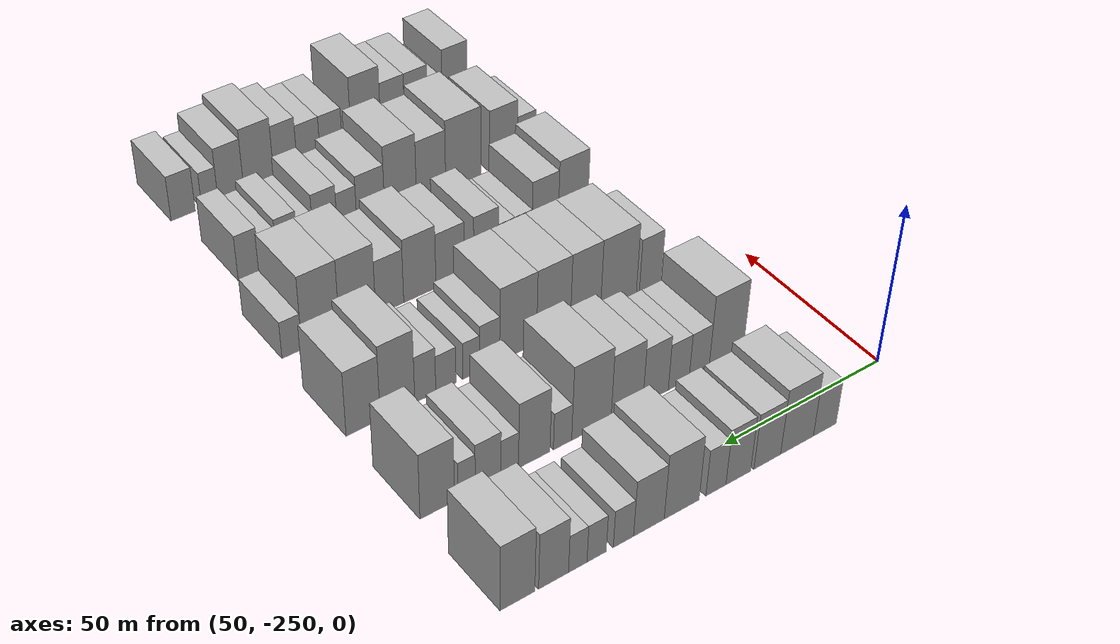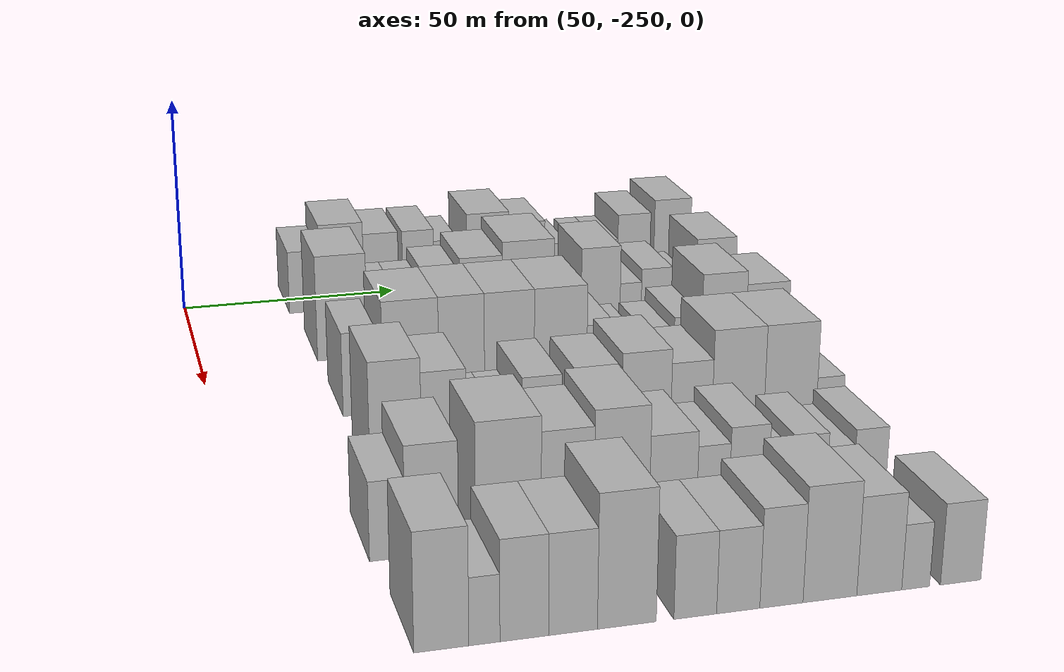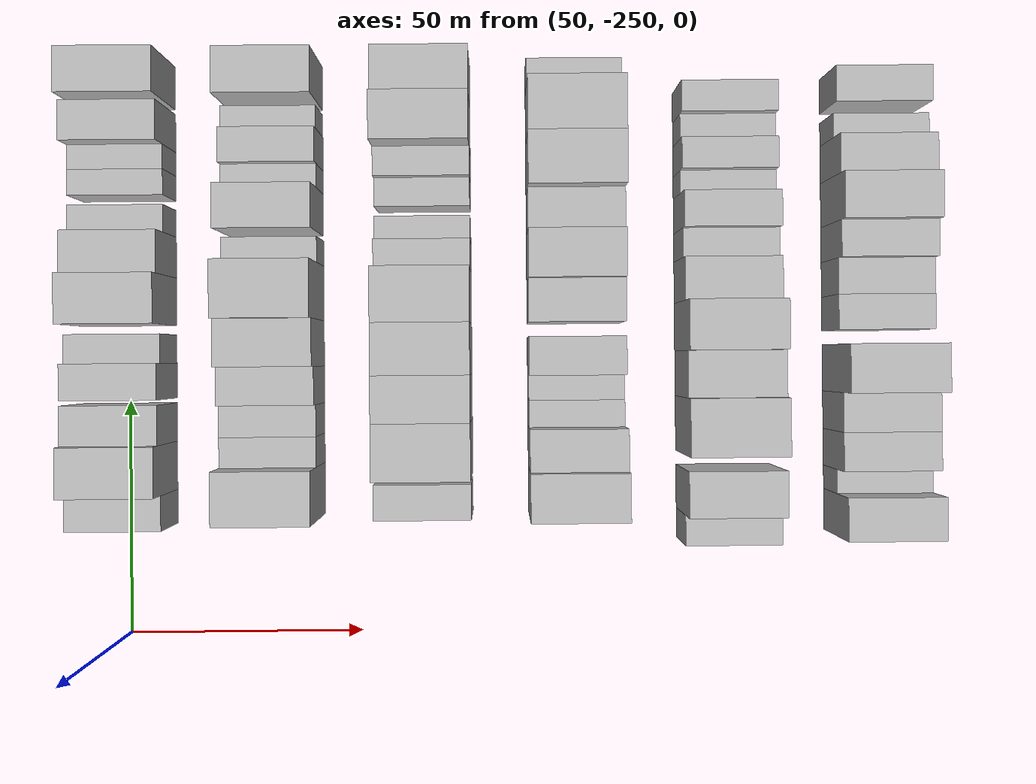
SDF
<sdf version="1.6">
 <world name="default">
  <model name="building_36">
   <static>1</static>
   <pose>50.0000 -222.8408 0 0.000000 0.000000 0.000000</pose>
   <link name="link">
    <pose>0 0 7.50 0 0 0</pose>
    <collision name="collision"><geometry><box><size>20.0000 7.3463 15.0000</size></box></geometry></collision>
    <visual name="visual">
     <cast_shadows>0</cast_shadows>
     <geometry><box><size>20.0000 7.3463 15.0000</size></box></geometry>
     <material>
      <script>
       <uri>model://HANNAS_wall/materials/scripts</uri>
       <uri>model://HANNAS_wall/materials/textures</uri>
       <name>vrc/HANNAS_wall</name>
      </script>
     </material>
    </visual>
   </link>
  </model>
  <model name="building_37">
   <static>1</static>
   <pose>50.0000 -213.9594 0 0.000000 0.000000 0.000000</pose>
   <link name="link">
    <pose>0 0 10.50 0 0 0</pose>
    <collision name="collision"><geometry><box><size>20.0000 10.4166 21.0000</size></box></geometry></collision>
    <visual name="visual">
     <cast_shadows>0</cast_shadows>
     <geometry><box><size>20.0000 10.4166 21.0000</size></box></geometry>
     <material>
      <script>
       <uri>model://HANNAS_wall/materials/scripts</uri>
       <uri>model://HANNAS_wall/materials/textures</uri>
       <name>vrc/HANNAS_wall</name>
      </script>
     </material>
    </visual>
   </link>
  </model>
  <model name="building_38">
   <static>1</static>
   <pose>50.0000 -204.5821 0 0.000000 0.000000 0.000000</pose>
   <link name="link">
    <pose>0 0 9.00 0 0 0</pose>
    <collision name="collision"><geometry><box><size>20.0000 8.3380 18.0000</size></box></geometry></collision>
    <visual name="visual">
     <cast_shadows>0</cast_shadows>
     <geometry><box><size>20.0000 8.3380 18.0000</size></box></geometry>
     <material>
      <script>
       <uri>model://HANNAS_wall/materials/scripts</uri>
       <uri>model://HANNAS_wall/materials/textures</uri>
       <name>vrc/HANNAS_wall</name>
      </script>
     </material>
    </visual>
   </link>
  </model>
  <model name="building_39">
   <static>1</static>
   <pose>50.0000 -195.6251 0 0.000000 0.000000 0.000000</pose>
   <link name="link">
    <pose>0 0 9.00 0 0 0</pose>
    <collision name="collision"><geometry><box><size>20.0000 7.5759 18.0000</size></box></geometry></collision>
    <visual name="visual">
     <cast_shadows>0</cast_shadows>
     <geometry><box><size>20.0000 7.5759 18.0000</size></box></geometry>
     <material>
      <script>
       <uri>model://HANNAS_wall/materials/scripts</uri>
       <uri>model://HANNAS_wall/materials/textures</uri>
       <name>vrc/HANNAS_wall</name>
      </script>
     </material>
    </visual>
   </link>
  </model>
  <model name="building_40">
   <static>1</static>
   <pose>50.0000 -188.8017 0 0.000000 0.000000 0.000000</pose>
   <link name="link">
    <pose>0 0 7.50 0 0 0</pose>
    <collision name="collision"><geometry><box><size>20.0000 6.0710 15.0000</size></box></geometry></collision>
    <visual name="visual">
     <cast_shadows>0</cast_shadows>
     <geometry><box><size>20.0000 6.0710 15.0000</size></box></geometry>
     <material>
      <script>
       <uri>model://HANNAS_wall/materials/scripts</uri>
       <uri>model://HANNAS_wall/materials/textures</uri>
       <name>vrc/HANNAS_wall</name>
      </script>
     </material>
    </visual>
   </link>
  </model>
  <model name="building_41">
   <static>1</static>
   <pose>50.0000 -178.6005 0 0.000000 0.000000 0.000000</pose>
   <link name="link">
    <pose>0 0 10.50 0 0 0</pose>
    <collision name="collision"><geometry><box><size>20.0000 10.3312 21.0000</size></box></geometry></collision>
    <visual name="visual">
     <cast_shadows>0</cast_shadows>
     <geometry><box><size>20.0000 10.3312 21.0000</size></box></geometry>
     <material>
      <script>
       <uri>model://HANNAS_wall/materials/scripts</uri>
       <uri>model://HANNAS_wall/materials/textures</uri>
       <name>vrc/HANNAS_wall</name>
      </script>
     </material>
    </visual>
   </link>
  </model>
  <model name="building_42">
   <static>1</static>
   <pose>50.0000 -168.9784 0 0.000000 0.000000 0.000000</pose>
   <link name="link">
    <pose>0 0 9.00 0 0 0</pose>
    <collision name="collision"><geometry><box><size>20.0000 8.9131 18.0000</size></box></geometry></collision>
    <visual name="visual">
     <cast_shadows>0</cast_shadows>
     <geometry><box><size>20.0000 8.9131 18.0000</size></box></geometry>
     <material>
      <script>
       <uri>model://HANNAS_wall/materials/scripts</uri>
       <uri>model://HANNAS_wall/materials/textures</uri>
       <name>vrc/HANNAS_wall</name>
      </script>
     </material>
    </visual>
   </link>
  </model>
  <model name="building_43">
   <static>1</static>
   <pose>50.0000 -161.6210 0 0.000000 0.000000 0.000000</pose>
   <link name="link">
    <pose>0 0 6.00 0 0 0</pose>
    <collision name="collision"><geometry><box><size>20.0000 5.8015 12.0000</size></box></geometry></collision>
    <visual name="visual">
     <cast_shadows>0</cast_shadows>
     <geometry><box><size>20.0000 5.8015 12.0000</size></box></geometry>
     <material>
      <script>
       <uri>model://HANNAS_wall/materials/scripts</uri>
       <uri>model://HANNAS_wall/materials/textures</uri>
       <name>vrc/HANNAS_wall</name>
      </script>
     </material>
    </visual>
   </link>
  </model>
  <model name="building_44">
   <static>1</static>
   <pose>50.0000 -154.0106 0 0.000000 0.000000 0.000000</pose>
   <link name="link">
    <pose>0 0 6.00 0 0 0</pose>
    <collision name="collision"><geometry><box><size>20.0000 5.4193 12.0000</size></box></geometry></collision>
    <visual name="visual">
     <cast_shadows>0</cast_shadows>
     <geometry><box><size>20.0000 5.4193 12.0000</size></box></geometry>
     <material>
      <script>
       <uri>model://HANNAS_wall/materials/scripts</uri>
       <uri>model://HANNAS_wall/materials/textures</uri>
       <name>vrc/HANNAS_wall</name>
      </script>
     </material>
    </visual>
   </link>
  </model>
  <model name="building_45">
   <static>1</static>
   <pose>50.0000 -148.7169 0 0.000000 0.000000 0.000000</pose>
   <link name="link">
    <pose>0 0 6.00 0 0 0</pose>
    <collision name="collision"><geometry><box><size>20.0000 5.1680 12.0000</size></box></geometry></collision>
    <visual name="visual">
     <cast_shadows>0</cast_shadows>
     <geometry><box><size>20.0000 5.1680 12.0000</size></box></geometry>
     <material>
      <script>
       <uri>model://HANNAS_wall/materials/scripts</uri>
       <uri>model://HANNAS_wall/materials/textures</uri>
       <name>vrc/HANNAS_wall</name>
      </script>
     </material>
    </visual>
   </link>
  </model>
  <model name="building_46">
   <static>1</static>
   <pose>50.0000 -142.0158 0 0.000000 0.000000 0.000000</pose>
   <link name="link">
    <pose>0 0 9.00 0 0 0</pose>
    <collision name="collision"><geometry><box><size>20.0000 8.2341 18.0000</size></box></geometry></collision>
    <visual name="visual">
     <cast_shadows>0</cast_shadows>
     <geometry><box><size>20.0000 8.2341 18.0000</size></box></geometry>
     <material>
      <script>
       <uri>model://HANNAS_wall/materials/scripts</uri>
       <uri>model://HANNAS_wall/materials/textures</uri>
       <name>vrc/HANNAS_wall</name>
      </script>
     </material>
    </visual>
   </link>
  </model>
  <model name="building_47">
   <static>1</static>
   <pose>50.0000 -132.2057 0 0.000000 0.000000 0.000000</pose>
   <link name="link">
    <pose>0 0 10.50 0 0 0</pose>
    <collision name="collision"><geometry><box><size>20.0000 9.3862 21.0000</size></box></geometry></collision>
    <visual name="visual">
     <cast_shadows>0</cast_shadows>
     <geometry><box><size>20.0000 9.3862 21.0000</size></box></geometry>
     <material>
      <script>
       <uri>model://HANNAS_wall/materials/scripts</uri>
       <uri>model://HANNAS_wall/materials/textures</uri>
       <name>vrc/HANNAS_wall</name>
      </script>
     </material>
    </visual>
   </link>
  </model>
  <model name="building_155">
   <static>1</static>
   <pose>82.0000 -219.1794 0 0.000000 0.000000 0.000000</pose>
   <link name="link">
    <pose>0 0 12.00 0 0 0</pose>
    <collision name="collision"><geometry><box><size>20.0000 11.1140 24.0000</size></box></geometry></collision>
    <visual name="visual">
     <cast_shadows>0</cast_shadows>
     <geometry><box><size>20.0000 11.1140 24.0000</size></box></geometry>
     <material>
      <script>
       <uri>model://HANNAS_wall/materials/scripts</uri>
       <uri>model://HANNAS_wall/materials/textures</uri>
       <name>vrc/HANNAS_wall</name>
      </script>
     </material>
    </visual>
   </link>
  </model>
  <model name="building_156">
   <static>1</static>
   <pose>82.0000 -210.4470 0 0.000000 0.000000 0.000000</pose>
   <link name="link">
    <pose>0 0 7.50 0 0 0</pose>
    <collision name="collision"><geometry><box><size>20.0000 6.3507 15.0000</size></box></geometry></collision>
    <visual name="visual">
     <cast_shadows>0</cast_shadows>
     <geometry><box><size>20.0000 6.3507 15.0000</size></box></geometry>
     <material>
      <script>
       <uri>model://HANNAS_wall/materials/scripts</uri>
       <uri>model://HANNAS_wall/materials/textures</uri>
       <name>vrc/HANNAS_wall</name>
      </script>
     </material>
    </visual>
   </link>
  </model>
  <model name="building_157">
   <static>1</static>
   <pose>82.0000 -203.9694 0 0.000000 0.000000 0.000000</pose>
   <link name="link">
    <pose>0 0 7.50 0 0 0</pose>
    <collision name="collision"><geometry><box><size>20.0000 6.6044 15.0000</size></box></geometry></collision>
    <visual name="visual">
     <cast_shadows>0</cast_shadows>
     <geometry><box><size>20.0000 6.6044 15.0000</size></box></geometry>
     <material>
      <script>
       <uri>model://HANNAS_wall/materials/scripts</uri>
       <uri>model://HANNAS_wall/materials/textures</uri>
       <name>vrc/HANNAS_wall</name>
      </script>
     </material>
    </visual>
   </link>
  </model>
  <model name="building_158">
   <static>1</static>
   <pose>82.0000 -196.7022 0 0.000000 0.000000 0.000000</pose>
   <link name="link">
    <pose>0 0 9.00 0 0 0</pose>
    <collision name="collision"><geometry><box><size>20.0000 7.9300 18.0000</size></box></geometry></collision>
    <visual name="visual">
     <cast_shadows>0</cast_shadows>
     <geometry><box><size>20.0000 7.9300 18.0000</size></box></geometry>
     <material>
      <script>
       <uri>model://HANNAS_wall/materials/scripts</uri>
       <uri>model://HANNAS_wall/materials/textures</uri>
       <name>vrc/HANNAS_wall</name>
      </script>
     </material>
    </visual>
   </link>
  </model>
  <model name="building_159">
   <static>1</static>
   <pose>82.0000 -187.8419 0 0.000000 0.000000 0.000000</pose>
   <link name="link">
    <pose>0 0 10.50 0 0 0</pose>
    <collision name="collision"><geometry><box><size>20.0000 9.7906 21.0000</size></box></geometry></collision>
    <visual name="visual">
     <cast_shadows>0</cast_shadows>
     <geometry><box><size>20.0000 9.7906 21.0000</size></box></geometry>
     <material>
      <script>
       <uri>model://HANNAS_wall/materials/scripts</uri>
       <uri>model://HANNAS_wall/materials/textures</uri>
       <name>vrc/HANNAS_wall</name>
      </script>
     </material>
    </visual>
   </link>
  </model>
  <model name="building_160">
   <static>1</static>
   <pose>82.0000 -177.0161 0 0.000000 0.000000 0.000000</pose>
   <link name="link">
    <pose>0 0 12.00 0 0 0</pose>
    <collision name="collision"><geometry><box><size>20.0000 11.8612 24.0000</size></box></geometry></collision>
    <visual name="visual">
     <cast_shadows>0</cast_shadows>
     <geometry><box><size>20.0000 11.8612 24.0000</size></box></geometry>
     <material>
      <script>
       <uri>model://HANNAS_wall/materials/scripts</uri>
       <uri>model://HANNAS_wall/materials/textures</uri>
       <name>vrc/HANNAS_wall</name>
      </script>
     </material>
    </visual>
   </link>
  </model>
  <model name="building_161">
   <static>1</static>
   <pose>82.0000 -168.3735 0 0.000000 0.000000 0.000000</pose>
   <link name="link">
    <pose>0 0 6.00 0 0 0</pose>
    <collision name="collision"><geometry><box><size>20.0000 5.4239 12.0000</size></box></geometry></collision>
    <visual name="visual">
     <cast_shadows>0</cast_shadows>
     <geometry><box><size>20.0000 5.4239 12.0000</size></box></geometry>
     <material>
      <script>
       <uri>model://HANNAS_wall/materials/scripts</uri>
       <uri>model://HANNAS_wall/materials/textures</uri>
       <name>vrc/HANNAS_wall</name>
      </script>
     </material>
    </visual>
   </link>
  </model>
  <model name="building_162">
   <static>1</static>
   <pose>82.0000 -160.0753 0 0.000000 0.000000 0.000000</pose>
   <link name="link">
    <pose>0 0 10.50 0 0 0</pose>
    <collision name="collision"><geometry><box><size>20.0000 9.1726 21.0000</size></box></geometry></collision>
    <visual name="visual">
     <cast_shadows>0</cast_shadows>
     <geometry><box><size>20.0000 9.1726 21.0000</size></box></geometry>
     <material>
      <script>
       <uri>model://HANNAS_wall/materials/scripts</uri>
       <uri>model://HANNAS_wall/materials/textures</uri>
       <name>vrc/HANNAS_wall</name>
      </script>
     </material>
    </visual>
   </link>
  </model>
  <model name="building_163">
   <static>1</static>
   <pose>82.0000 -152.9676 0 0.000000 0.000000 0.000000</pose>
   <link name="link">
    <pose>0 0 6.00 0 0 0</pose>
    <collision name="collision"><geometry><box><size>20.0000 5.0426 12.0000</size></box></geometry></collision>
    <visual name="visual">
     <cast_shadows>0</cast_shadows>
     <geometry><box><size>20.0000 5.0426 12.0000</size></box></geometry>
     <material>
      <script>
       <uri>model://HANNAS_wall/materials/scripts</uri>
       <uri>model://HANNAS_wall/materials/textures</uri>
       <name>vrc/HANNAS_wall</name>
      </script>
     </material>
    </visual>
   </link>
  </model>
  <model name="building_164">
   <static>1</static>
   <pose>82.0000 -146.7928 0 0.000000 0.000000 0.000000</pose>
   <link name="link">
    <pose>0 0 7.50 0 0 0</pose>
    <collision name="collision"><geometry><box><size>20.0000 7.3072 15.0000</size></box></geometry></collision>
    <visual name="visual">
     <cast_shadows>0</cast_shadows>
     <geometry><box><size>20.0000 7.3072 15.0000</size></box></geometry>
     <material>
      <script>
       <uri>model://HANNAS_wall/materials/scripts</uri>
       <uri>model://HANNAS_wall/materials/textures</uri>
       <name>vrc/HANNAS_wall</name>
      </script>
     </material>
    </visual>
   </link>
  </model>
  <model name="building_165">
   <static>1</static>
   <pose>82.0000 -140.7306 0 0.000000 0.000000 0.000000</pose>
   <link name="link">
    <pose>0 0 6.00 0 0 0</pose>
    <collision name="collision"><geometry><box><size>20.0000 4.8173 12.0000</size></box></geometry></collision>
    <visual name="visual">
     <cast_shadows>0</cast_shadows>
     <geometry><box><size>20.0000 4.8173 12.0000</size></box></geometry>
     <material>
      <script>
       <uri>model://HANNAS_wall/materials/scripts</uri>
       <uri>model://HANNAS_wall/materials/textures</uri>
       <name>vrc/HANNAS_wall</name>
      </script>
     </material>
    </visual>
   </link>
  </model>
  <model name="building_166">
   <static>1</static>
   <pose>82.0000 -132.5626 0 0.000000 0.000000 0.000000</pose>
   <link name="link">
    <pose>0 0 10.50 0 0 0</pose>
    <collision name="collision"><geometry><box><size>20.0000 9.5186 21.0000</size></box></geometry></collision>
    <visual name="visual">
     <cast_shadows>0</cast_shadows>
     <geometry><box><size>20.0000 9.5186 21.0000</size></box></geometry>
     <material>
      <script>
       <uri>model://HANNAS_wall/materials/scripts</uri>
       <uri>model://HANNAS_wall/materials/textures</uri>
       <name>vrc/HANNAS_wall</name>
      </script>
     </material>
    </visual>
   </link>
  </model>
  <model name="building_281">
   <static>1</static>
   <pose>114.0000 -220.7055 0 0.000000 0.000000 0.000000</pose>
   <link name="link">
    <pose>0 0 9.00 0 0 0</pose>
    <collision name="collision"><geometry><box><size>20.0000 7.2987 18.0000</size></box></geometry></collision>
    <visual name="visual">
     <cast_shadows>0</cast_shadows>
     <geometry><box><size>20.0000 7.2987 18.0000</size></box></geometry>
     <material>
      <script>
       <uri>model://HANNAS_wall/materials/scripts</uri>
       <uri>model://HANNAS_wall/materials/textures</uri>
       <name>vrc/HANNAS_wall</name>
      </script>
     </material>
    </visual>
   </link>
  </model>
  <model name="building_282">
   <static>1</static>
   <pose>114.0000 -210.2077 0 0.000000 0.000000 0.000000</pose>
   <link name="link">
    <pose>0 0 12.00 0 0 0</pose>
    <collision name="collision"><geometry><box><size>20.0000 11.6969 24.0000</size></box></geometry></collision>
    <visual name="visual">
     <cast_shadows>0</cast_shadows>
     <geometry><box><size>20.0000 11.6969 24.0000</size></box></geometry>
     <material>
      <script>
       <uri>model://HANNAS_wall/materials/scripts</uri>
       <uri>model://HANNAS_wall/materials/textures</uri>
       <name>vrc/HANNAS_wall</name>
      </script>
     </material>
    </visual>
   </link>
  </model>
  <model name="building_283">
   <static>1</static>
   <pose>114.0000 -199.5411 0 0.000000 0.000000 0.000000</pose>
   <link name="link">
    <pose>0 0 12.00 0 0 0</pose>
    <collision name="collision"><geometry><box><size>20.0000 9.6362 24.0000</size></box></geometry></collision>
    <visual name="visual">
     <cast_shadows>0</cast_shadows>
     <geometry><box><size>20.0000 9.6362 24.0000</size></box></geometry>
     <material>
      <script>
       <uri>model://HANNAS_wall/materials/scripts</uri>
       <uri>model://HANNAS_wall/materials/textures</uri>
       <name>vrc/HANNAS_wall</name>
      </script>
     </material>
    </visual>
   </link>
  </model>
  <model name="building_284">
   <static>1</static>
   <pose>114.0000 -189.4087 0 0.000000 0.000000 0.000000</pose>
   <link name="link">
    <pose>0 0 12.00 0 0 0</pose>
    <collision name="collision"><geometry><box><size>20.0000 10.6286 24.0000</size></box></geometry></collision>
    <visual name="visual">
     <cast_shadows>0</cast_shadows>
     <geometry><box><size>20.0000 10.6286 24.0000</size></box></geometry>
     <material>
      <script>
       <uri>model://HANNAS_wall/materials/scripts</uri>
       <uri>model://HANNAS_wall/materials/textures</uri>
       <name>vrc/HANNAS_wall</name>
      </script>
     </material>
    </visual>
   </link>
  </model>
  <model name="building_285">
   <static>1</static>
   <pose>114.0000 -178.4120 0 0.000000 0.000000 0.000000</pose>
   <link name="link">
    <pose>0 0 12.00 0 0 0</pose>
    <collision name="collision"><geometry><box><size>20.0000 11.3648 24.0000</size></box></geometry></collision>
    <visual name="visual">
     <cast_shadows>0</cast_shadows>
     <geometry><box><size>20.0000 11.3648 24.0000</size></box></geometry>
     <material>
      <script>
       <uri>model://HANNAS_wall/materials/scripts</uri>
       <uri>model://HANNAS_wall/materials/textures</uri>
       <name>vrc/HANNAS_wall</name>
      </script>
     </material>
    </visual>
   </link>
  </model>
  <model name="building_286">
   <static>1</static>
   <pose>114.0000 -169.6664 0 0.000000 0.000000 0.000000</pose>
   <link name="link">
    <pose>0 0 7.50 0 0 0</pose>
    <collision name="collision"><geometry><box><size>20.0000 6.1264 15.0000</size></box></geometry></collision>
    <visual name="visual">
     <cast_shadows>0</cast_shadows>
     <geometry><box><size>20.0000 6.1264 15.0000</size></box></geometry>
     <material>
      <script>
       <uri>model://HANNAS_wall/materials/scripts</uri>
       <uri>model://HANNAS_wall/materials/textures</uri>
       <name>vrc/HANNAS_wall</name>
      </script>
     </material>
    </visual>
   </link>
  </model>
  <model name="building_287">
   <static>1</static>
   <pose>114.0000 -164.0897 0 0.000000 0.000000 0.000000</pose>
   <link name="link">
    <pose>0 0 6.00 0 0 0</pose>
    <collision name="collision"><geometry><box><size>20.0000 5.0271 12.0000</size></box></geometry></collision>
    <visual name="visual">
     <cast_shadows>0</cast_shadows>
     <geometry><box><size>20.0000 5.0271 12.0000</size></box></geometry>
     <material>
      <script>
       <uri>model://HANNAS_wall/materials/scripts</uri>
       <uri>model://HANNAS_wall/materials/textures</uri>
       <name>vrc/HANNAS_wall</name>
      </script>
     </material>
    </visual>
   </link>
  </model>
  <model name="building_288">
   <static>1</static>
   <pose>114.0000 -156.5793 0 0.000000 0.000000 0.000000</pose>
   <link name="link">
    <pose>0 0 6.00 0 0 0</pose>
    <collision name="collision"><geometry><box><size>20.0000 5.9936 12.0000</size></box></geometry></collision>
    <visual name="visual">
     <cast_shadows>0</cast_shadows>
     <geometry><box><size>20.0000 5.9936 12.0000</size></box></geometry>
     <material>
      <script>
       <uri>model://HANNAS_wall/materials/scripts</uri>
       <uri>model://HANNAS_wall/materials/textures</uri>
       <name>vrc/HANNAS_wall</name>
      </script>
     </material>
    </visual>
   </link>
  </model>
  <model name="building_289">
   <static>1</static>
   <pose>114.0000 -150.5225 0 0.000000 0.000000 0.000000</pose>
   <link name="link">
    <pose>0 0 7.50 0 0 0</pose>
    <collision name="collision"><geometry><box><size>20.0000 6.1200 15.0000</size></box></geometry></collision>
    <visual name="visual">
     <cast_shadows>0</cast_shadows>
     <geometry><box><size>20.0000 6.1200 15.0000</size></box></geometry>
     <material>
      <script>
       <uri>model://HANNAS_wall/materials/scripts</uri>
       <uri>model://HANNAS_wall/materials/textures</uri>
       <name>vrc/HANNAS_wall</name>
      </script>
     </material>
    </visual>
   </link>
  </model>
  <model name="building_290">
   <static>1</static>
   <pose>114.0000 -142.4748 0 0.000000 0.000000 0.000000</pose>
   <link name="link">
    <pose>0 0 12.00 0 0 0</pose>
    <collision name="collision"><geometry><box><size>20.0000 9.9754 24.0000</size></box></geometry></collision>
    <visual name="visual">
     <cast_shadows>0</cast_shadows>
     <geometry><box><size>20.0000 9.9754 24.0000</size></box></geometry>
     <material>
      <script>
       <uri>model://HANNAS_wall/materials/scripts</uri>
       <uri>model://HANNAS_wall/materials/textures</uri>
       <name>vrc/HANNAS_wall</name>
      </script>
     </material>
    </visual>
   </link>
  </model>
  <model name="building_291">
   <static>1</static>
   <pose>114.0000 -132.6540 0 0.000000 0.000000 0.000000</pose>
   <link name="link">
    <pose>0 0 10.50 0 0 0</pose>
    <collision name="collision"><geometry><box><size>20.0000 9.6663 21.0000</size></box></geometry></collision>
    <visual name="visual">
     <cast_shadows>0</cast_shadows>
     <geometry><box><size>20.0000 9.6663 21.0000</size></box></geometry>
     <material>
      <script>
       <uri>model://HANNAS_wall/materials/scripts</uri>
       <uri>model://HANNAS_wall/materials/textures</uri>
       <name>vrc/HANNAS_wall</name>
      </script>
     </material>
    </visual>
   </link>
  </model>
  <model name="building_389">
   <static>1</static>
   <pose>146.0000 -219.5476 0 0.000000 0.000000 0.000000</pose>
   <link name="link">
    <pose>0 0 12.00 0 0 0</pose>
    <collision name="collision"><geometry><box><size>20.0000 9.9156 24.0000</size></box></geometry></collision>
    <visual name="visual">
     <cast_shadows>0</cast_shadows>
     <geometry><box><size>20.0000 9.9156 24.0000</size></box></geometry>
     <material>
      <script>
       <uri>model://HANNAS_wall/materials/scripts</uri>
       <uri>model://HANNAS_wall/materials/textures</uri>
       <name>vrc/HANNAS_wall</name>
      </script>
     </material>
    </visual>
   </link>
  </model>
  <model name="building_390">
   <static>1</static>
   <pose>146.0000 -210.2487 0 0.000000 0.000000 0.000000</pose>
   <link name="link">
    <pose>0 0 10.50 0 0 0</pose>
    <collision name="collision"><geometry><box><size>20.0000 8.6822 21.0000</size></box></geometry></collision>
    <visual name="visual">
     <cast_shadows>0</cast_shadows>
     <geometry><box><size>20.0000 8.6822 21.0000</size></box></geometry>
     <material>
      <script>
       <uri>model://HANNAS_wall/materials/scripts</uri>
       <uri>model://HANNAS_wall/materials/textures</uri>
       <name>vrc/HANNAS_wall</name>
      </script>
     </material>
    </visual>
   </link>
  </model>
  <model name="building_391">
   <static>1</static>
   <pose>146.0000 -203.0775 0 0.000000 0.000000 0.000000</pose>
   <link name="link">
    <pose>0 0 6.00 0 0 0</pose>
    <collision name="collision"><geometry><box><size>20.0000 5.6601 12.0000</size></box></geometry></collision>
    <visual name="visual">
     <cast_shadows>0</cast_shadows>
     <geometry><box><size>20.0000 5.6601 12.0000</size></box></geometry>
     <material>
      <script>
       <uri>model://HANNAS_wall/materials/scripts</uri>
       <uri>model://HANNAS_wall/materials/textures</uri>
       <name>vrc/HANNAS_wall</name>
      </script>
     </material>
    </visual>
   </link>
  </model>
  <model name="building_392">
   <static>1</static>
   <pose>146.0000 -197.6339 0 0.000000 0.000000 0.000000</pose>
   <link name="link">
    <pose>0 0 6.00 0 0 0</pose>
    <collision name="collision"><geometry><box><size>20.0000 5.2272 12.0000</size></box></geometry></collision>
    <visual name="visual">
     <cast_shadows>0</cast_shadows>
     <geometry><box><size>20.0000 5.2272 12.0000</size></box></geometry>
     <material>
      <script>
       <uri>model://HANNAS_wall/materials/scripts</uri>
       <uri>model://HANNAS_wall/materials/textures</uri>
       <name>vrc/HANNAS_wall</name>
      </script>
     </material>
    </visual>
   </link>
  </model>
  <model name="building_393">
   <static>1</static>
   <pose>146.0000 -191.0450 0 0.000000 0.000000 0.000000</pose>
   <link name="link">
    <pose>0 0 9.00 0 0 0</pose>
    <collision name="collision"><geometry><box><size>20.0000 7.9506 18.0000</size></box></geometry></collision>
    <visual name="visual">
     <cast_shadows>0</cast_shadows>
     <geometry><box><size>20.0000 7.9506 18.0000</size></box></geometry>
     <material>
      <script>
       <uri>model://HANNAS_wall/materials/scripts</uri>
       <uri>model://HANNAS_wall/materials/textures</uri>
       <name>vrc/HANNAS_wall</name>
      </script>
     </material>
    </visual>
   </link>
  </model>
  <model name="building_394">
   <static>1</static>
   <pose>146.0000 -179.5818 0 0.000000 0.000000 0.000000</pose>
   <link name="link">
    <pose>0 0 9.00 0 0 0</pose>
    <collision name="collision"><geometry><box><size>20.0000 8.9758 18.0000</size></box></geometry></collision>
    <visual name="visual">
     <cast_shadows>0</cast_shadows>
     <geometry><box><size>20.0000 8.9758 18.0000</size></box></geometry>
     <material>
      <script>
       <uri>model://HANNAS_wall/materials/scripts</uri>
       <uri>model://HANNAS_wall/materials/textures</uri>
       <name>vrc/HANNAS_wall</name>
      </script>
     </material>
    </visual>
   </link>
  </model>
  <model name="building_395">
   <static>1</static>
   <pose>146.0000 -170.0930 0 0.000000 0.000000 0.000000</pose>
   <link name="link">
    <pose>0 0 10.50 0 0 0</pose>
    <collision name="collision"><geometry><box><size>20.0000 10.0017 21.0000</size></box></geometry></collision>
    <visual name="visual">
     <cast_shadows>0</cast_shadows>
     <geometry><box><size>20.0000 10.0017 21.0000</size></box></geometry>
     <material>
      <script>
       <uri>model://HANNAS_wall/materials/scripts</uri>
       <uri>model://HANNAS_wall/materials/textures</uri>
       <name>vrc/HANNAS_wall</name>
      </script>
     </material>
    </visual>
   </link>
  </model>
  <model name="building_396">
   <static>1</static>
   <pose>146.0000 -160.8358 0 0.000000 0.000000 0.000000</pose>
   <link name="link">
    <pose>0 0 9.00 0 0 0</pose>
    <collision name="collision"><geometry><box><size>20.0000 8.5126 18.0000</size></box></geometry></collision>
    <visual name="visual">
     <cast_shadows>0</cast_shadows>
     <geometry><box><size>20.0000 8.5126 18.0000</size></box></geometry>
     <material>
      <script>
       <uri>model://HANNAS_wall/materials/scripts</uri>
       <uri>model://HANNAS_wall/materials/textures</uri>
       <name>vrc/HANNAS_wall</name>
      </script>
     </material>
    </visual>
   </link>
  </model>
  <model name="building_397">
   <static>1</static>
   <pose>146.0000 -151.1555 0 0.000000 0.000000 0.000000</pose>
   <link name="link">
    <pose>0 0 12.00 0 0 0</pose>
    <collision name="collision"><geometry><box><size>20.0000 10.8481 24.0000</size></box></geometry></collision>
    <visual name="visual">
     <cast_shadows>0</cast_shadows>
     <geometry><box><size>20.0000 10.8481 24.0000</size></box></geometry>
     <material>
      <script>
       <uri>model://HANNAS_wall/materials/scripts</uri>
       <uri>model://HANNAS_wall/materials/textures</uri>
       <name>vrc/HANNAS_wall</name>
      </script>
     </material>
    </visual>
   </link>
  </model>
  <model name="building_398">
   <static>1</static>
   <pose>146.0000 -140.1941 0 0.000000 0.000000 0.000000</pose>
   <link name="link">
    <pose>0 0 12.00 0 0 0</pose>
    <collision name="collision"><geometry><box><size>20.0000 11.0746 24.0000</size></box></geometry></collision>
    <visual name="visual">
     <cast_shadows>0</cast_shadows>
     <geometry><box><size>20.0000 11.0746 24.0000</size></box></geometry>
     <material>
      <script>
       <uri>model://HANNAS_wall/materials/scripts</uri>
       <uri>model://HANNAS_wall/materials/textures</uri>
       <name>vrc/HANNAS_wall</name>
      </script>
     </material>
    </visual>
   </link>
  </model>
  <model name="building_399">
   <static>1</static>
   <pose>146.0000 -131.7588 0 0.000000 0.000000 0.000000</pose>
   <link name="link">
    <pose>0 0 6.00 0 0 0</pose>
    <collision name="collision"><geometry><box><size>20.0000 5.7961 12.0000</size></box></geometry></collision>
    <visual name="visual">
     <cast_shadows>0</cast_shadows>
     <geometry><box><size>20.0000 5.7961 12.0000</size></box></geometry>
     <material>
      <script>
       <uri>model://HANNAS_wall/materials/scripts</uri>
       <uri>model://HANNAS_wall/materials/textures</uri>
       <name>vrc/HANNAS_wall</name>
      </script>
     </material>
    </visual>
   </link>
  </model>
  <model name="building_507">
   <static>1</static>
   <pose>178.0000 -227.2089 0 0.000000 0.000000 0.000000</pose>
   <link name="link">
    <pose>0 0 7.50 0 0 0</pose>
    <collision name="collision"><geometry><box><size>20.0000 6.2738 15.0000</size></box></geometry></collision>
    <visual name="visual">
     <cast_shadows>0</cast_shadows>
     <geometry><box><size>20.0000 6.2738 15.0000</size></box></geometry>
     <material>
      <script>
       <uri>model://HANNAS_wall/materials/scripts</uri>
       <uri>model://HANNAS_wall/materials/textures</uri>
       <name>vrc/HANNAS_wall</name>
      </script>
     </material>
    </visual>
   </link>
  </model>
  <model name="building_508">
   <static>1</static>
   <pose>178.0000 -219.3512 0 0.000000 0.000000 0.000000</pose>
   <link name="link">
    <pose>0 0 10.50 0 0 0</pose>
    <collision name="collision"><geometry><box><size>20.0000 9.4416 21.0000</size></box></geometry></collision>
    <visual name="visual">
     <cast_shadows>0</cast_shadows>
     <geometry><box><size>20.0000 9.4416 21.0000</size></box></geometry>
     <material>
      <script>
       <uri>model://HANNAS_wall/materials/scripts</uri>
       <uri>model://HANNAS_wall/materials/textures</uri>
       <name>vrc/HANNAS_wall</name>
      </script>
     </material>
    </visual>
   </link>
  </model>
  <model name="building_509">
   <static>1</static>
   <pose>178.0000 -205.7139 0 0.000000 0.000000 0.000000</pose>
   <link name="link">
    <pose>0 0 12.00 0 0 0</pose>
    <collision name="collision"><geometry><box><size>20.0000 11.8331 24.0000</size></box></geometry></collision>
    <visual name="visual">
     <cast_shadows>0</cast_shadows>
     <geometry><box><size>20.0000 11.8331 24.0000</size></box></geometry>
     <material>
      <script>
       <uri>model://HANNAS_wall/materials/scripts</uri>
       <uri>model://HANNAS_wall/materials/textures</uri>
       <name>vrc/HANNAS_wall</name>
      </script>
     </material>
    </visual>
   </link>
  </model>
  <model name="building_510">
   <static>1</static>
   <pose>178.0000 -194.9805 0 0.000000 0.000000 0.000000</pose>
   <link name="link">
    <pose>0 0 10.50 0 0 0</pose>
    <collision name="collision"><geometry><box><size>20.0000 9.6338 21.0000</size></box></geometry></collision>
    <visual name="visual">
     <cast_shadows>0</cast_shadows>
     <geometry><box><size>20.0000 9.6338 21.0000</size></box></geometry>
     <material>
      <script>
       <uri>model://HANNAS_wall/materials/scripts</uri>
       <uri>model://HANNAS_wall/materials/textures</uri>
       <name>vrc/HANNAS_wall</name>
      </script>
     </material>
    </visual>
   </link>
  </model>
  <model name="building_511">
   <static>1</static>
   <pose>178.0000 -185.0257 0 0.000000 0.000000 0.000000</pose>
   <link name="link">
    <pose>0 0 12.00 0 0 0</pose>
    <collision name="collision"><geometry><box><size>20.0000 10.2758 24.0000</size></box></geometry></collision>
    <visual name="visual">
     <cast_shadows>0</cast_shadows>
     <geometry><box><size>20.0000 10.2758 24.0000</size></box></geometry>
     <material>
      <script>
       <uri>model://HANNAS_wall/materials/scripts</uri>
       <uri>model://HANNAS_wall/materials/textures</uri>
       <name>vrc/HANNAS_wall</name>
      </script>
     </material>
    </visual>
   </link>
  </model>
  <model name="building_512">
   <static>1</static>
   <pose>178.0000 -175.4369 0 0.000000 0.000000 0.000000</pose>
   <link name="link">
    <pose>0 0 9.00 0 0 0</pose>
    <collision name="collision"><geometry><box><size>20.0000 8.9018 18.0000</size></box></geometry></collision>
    <visual name="visual">
     <cast_shadows>0</cast_shadows>
     <geometry><box><size>20.0000 8.9018 18.0000</size></box></geometry>
     <material>
      <script>
       <uri>model://HANNAS_wall/materials/scripts</uri>
       <uri>model://HANNAS_wall/materials/textures</uri>
       <name>vrc/HANNAS_wall</name>
      </script>
     </material>
    </visual>
   </link>
  </model>
  <model name="building_513">
   <static>1</static>
   <pose>178.0000 -167.9292 0 0.000000 0.000000 0.000000</pose>
   <link name="link">
    <pose>0 0 7.50 0 0 0</pose>
    <collision name="collision"><geometry><box><size>20.0000 6.1137 15.0000</size></box></geometry></collision>
    <visual name="visual">
     <cast_shadows>0</cast_shadows>
     <geometry><box><size>20.0000 6.1137 15.0000</size></box></geometry>
     <material>
      <script>
       <uri>model://HANNAS_wall/materials/scripts</uri>
       <uri>model://HANNAS_wall/materials/textures</uri>
       <name>vrc/HANNAS_wall</name>
      </script>
     </material>
    </visual>
   </link>
  </model>
  <model name="building_514">
   <static>1</static>
   <pose>178.0000 -161.1309 0 0.000000 0.000000 0.000000</pose>
   <link name="link">
    <pose>0 0 9.00 0 0 0</pose>
    <collision name="collision"><geometry><box><size>20.0000 7.4828 18.0000</size></box></geometry></collision>
    <visual name="visual">
     <cast_shadows>0</cast_shadows>
     <geometry><box><size>20.0000 7.4828 18.0000</size></box></geometry>
     <material>
      <script>
       <uri>model://HANNAS_wall/materials/scripts</uri>
       <uri>model://HANNAS_wall/materials/textures</uri>
       <name>vrc/HANNAS_wall</name>
      </script>
     </material>
    </visual>
   </link>
  </model>
  <model name="building_515">
   <static>1</static>
   <pose>178.0000 -154.9692 0 0.000000 0.000000 0.000000</pose>
   <link name="link">
    <pose>0 0 6.00 0 0 0</pose>
    <collision name="collision"><geometry><box><size>20.0000 4.8407 12.0000</size></box></geometry></collision>
    <visual name="visual">
     <cast_shadows>0</cast_shadows>
     <geometry><box><size>20.0000 4.8407 12.0000</size></box></geometry>
     <material>
      <script>
       <uri>model://HANNAS_wall/materials/scripts</uri>
       <uri>model://HANNAS_wall/materials/textures</uri>
       <name>vrc/HANNAS_wall</name>
      </script>
     </material>
    </visual>
   </link>
  </model>
  <model name="building_516">
   <static>1</static>
   <pose>178.0000 -149.3082 0 0.000000 0.000000 0.000000</pose>
   <link name="link">
    <pose>0 0 7.50 0 0 0</pose>
    <collision name="collision"><geometry><box><size>20.0000 6.4811 15.0000</size></box></geometry></collision>
    <visual name="visual">
     <cast_shadows>0</cast_shadows>
     <geometry><box><size>20.0000 6.4811 15.0000</size></box></geometry>
     <material>
      <script>
       <uri>model://HANNAS_wall/materials/scripts</uri>
       <uri>model://HANNAS_wall/materials/textures</uri>
       <name>vrc/HANNAS_wall</name>
      </script>
     </material>
    </visual>
   </link>
  </model>
  <model name="building_517">
   <static>1</static>
   <pose>178.0000 -143.4395 0 0.000000 0.000000 0.000000</pose>
   <link name="link">
    <pose>0 0 6.00 0 0 0</pose>
    <collision name="collision"><geometry><box><size>20.0000 5.2563 12.0000</size></box></geometry></collision>
    <visual name="visual">
     <cast_shadows>0</cast_shadows>
     <geometry><box><size>20.0000 5.2563 12.0000</size></box></geometry>
     <material>
      <script>
       <uri>model://HANNAS_wall/materials/scripts</uri>
       <uri>model://HANNAS_wall/materials/textures</uri>
       <name>vrc/HANNAS_wall</name>
      </script>
     </material>
    </visual>
   </link>
  </model>
  <model name="building_518">
   <static>1</static>
   <pose>178.0000 -137.5896 0 0.000000 0.000000 0.000000</pose>
   <link name="link">
    <pose>0 0 7.50 0 0 0</pose>
    <collision name="collision"><geometry><box><size>20.0000 6.4435 15.0000</size></box></geometry></collision>
    <visual name="visual">
     <cast_shadows>0</cast_shadows>
     <geometry><box><size>20.0000 6.4435 15.0000</size></box></geometry>
     <material>
      <script>
       <uri>model://HANNAS_wall/materials/scripts</uri>
       <uri>model://HANNAS_wall/materials/textures</uri>
       <name>vrc/HANNAS_wall</name>
      </script>
     </material>
    </visual>
   </link>
  </model>
  <model name="building_621">
   <static>1</static>
   <pose>210.0000 -224.6155 0 0.000000 0.000000 0.000000</pose>
   <link name="link">
    <pose>0 0 10.50 0 0 0</pose>
    <collision name="collision"><geometry><box><size>20.0000 8.8545 21.0000</size></box></geometry></collision>
    <visual name="visual">
     <cast_shadows>0</cast_shadows>
     <geometry><box><size>20.0000 8.8545 21.0000</size></box></geometry>
     <material>
      <script>
       <uri>model://HANNAS_wall/materials/scripts</uri>
       <uri>model://HANNAS_wall/materials/textures</uri>
       <name>vrc/HANNAS_wall</name>
      </script>
     </material>
    </visual>
   </link>
  </model>
  <model name="building_622">
   <static>1</static>
   <pose>210.0000 -217.6604 0 0.000000 0.000000 0.000000</pose>
   <link name="link">
    <pose>0 0 6.00 0 0 0</pose>
    <collision name="collision"><geometry><box><size>20.0000 5.0558 12.0000</size></box></geometry></collision>
    <visual name="visual">
     <cast_shadows>0</cast_shadows>
     <geometry><box><size>20.0000 5.0558 12.0000</size></box></geometry>
     <material>
      <script>
       <uri>model://HANNAS_wall/materials/scripts</uri>
       <uri>model://HANNAS_wall/materials/textures</uri>
       <name>vrc/HANNAS_wall</name>
      </script>
     </material>
    </visual>
   </link>
  </model>
  <model name="building_623">
   <static>1</static>
   <pose>210.0000 -211.1441 0 0.000000 0.000000 0.000000</pose>
   <link name="link">
    <pose>0 0 9.00 0 0 0</pose>
    <collision name="collision"><geometry><box><size>20.0000 7.9767 18.0000</size></box></geometry></collision>
    <visual name="visual">
     <cast_shadows>0</cast_shadows>
     <geometry><box><size>20.0000 7.9767 18.0000</size></box></geometry>
     <material>
      <script>
       <uri>model://HANNAS_wall/materials/scripts</uri>
       <uri>model://HANNAS_wall/materials/textures</uri>
       <name>vrc/HANNAS_wall</name>
      </script>
     </material>
    </visual>
   </link>
  </model>
  <model name="building_624">
   <static>1</static>
   <pose>210.0000 -203.0945 0 0.000000 0.000000 0.000000</pose>
   <link name="link">
    <pose>0 0 9.00 0 0 0</pose>
    <collision name="collision"><geometry><box><size>20.0000 8.1226 18.0000</size></box></geometry></collision>
    <visual name="visual">
     <cast_shadows>0</cast_shadows>
     <geometry><box><size>20.0000 8.1226 18.0000</size></box></geometry>
     <material>
      <script>
       <uri>model://HANNAS_wall/materials/scripts</uri>
       <uri>model://HANNAS_wall/materials/textures</uri>
       <name>vrc/HANNAS_wall</name>
      </script>
     </material>
    </visual>
   </link>
  </model>
  <model name="building_625">
   <static>1</static>
   <pose>210.0000 -194.0771 0 0.000000 0.000000 0.000000</pose>
   <link name="link">
    <pose>0 0 12.00 0 0 0</pose>
    <collision name="collision"><geometry><box><size>20.0000 9.9121 24.0000</size></box></geometry></collision>
    <visual name="visual">
     <cast_shadows>0</cast_shadows>
     <geometry><box><size>20.0000 9.9121 24.0000</size></box></geometry>
     <material>
      <script>
       <uri>model://HANNAS_wall/materials/scripts</uri>
       <uri>model://HANNAS_wall/materials/textures</uri>
       <name>vrc/HANNAS_wall</name>
      </script>
     </material>
    </visual>
   </link>
  </model>
  <model name="building_626">
   <static>1</static>
   <pose>210.0000 -182.4560 0 0.000000 0.000000 0.000000</pose>
   <link name="link">
    <pose>0 0 7.50 0 0 0</pose>
    <collision name="collision"><geometry><box><size>20.0000 7.3302 15.0000</size></box></geometry></collision>
    <visual name="visual">
     <cast_shadows>0</cast_shadows>
     <geometry><box><size>20.0000 7.3302 15.0000</size></box></geometry>
     <material>
      <script>
       <uri>model://HANNAS_wall/materials/scripts</uri>
       <uri>model://HANNAS_wall/materials/textures</uri>
       <name>vrc/HANNAS_wall</name>
      </script>
     </material>
    </visual>
   </link>
  </model>
  <model name="building_627">
   <static>1</static>
   <pose>210.0000 -175.0436 0 0.000000 0.000000 0.000000</pose>
   <link name="link">
    <pose>0 0 7.50 0 0 0</pose>
    <collision name="collision"><geometry><box><size>20.0000 7.4946 15.0000</size></box></geometry></collision>
    <visual name="visual">
     <cast_shadows>0</cast_shadows>
     <geometry><box><size>20.0000 7.4946 15.0000</size></box></geometry>
     <material>
      <script>
       <uri>model://HANNAS_wall/materials/scripts</uri>
       <uri>model://HANNAS_wall/materials/textures</uri>
       <name>vrc/HANNAS_wall</name>
      </script>
     </material>
    </visual>
   </link>
  </model>
  <model name="building_628">
   <static>1</static>
   <pose>210.0000 -167.5069 0 0.000000 0.000000 0.000000</pose>
   <link name="link">
    <pose>0 0 9.00 0 0 0</pose>
    <collision name="collision"><geometry><box><size>20.0000 7.5789 18.0000</size></box></geometry></collision>
    <visual name="visual">
     <cast_shadows>0</cast_shadows>
     <geometry><box><size>20.0000 7.5789 18.0000</size></box></geometry>
     <material>
      <script>
       <uri>model://HANNAS_wall/materials/scripts</uri>
       <uri>model://HANNAS_wall/materials/textures</uri>
       <name>vrc/HANNAS_wall</name>
      </script>
     </material>
    </visual>
   </link>
  </model>
  <model name="building_629">
   <static>1</static>
   <pose>210.0000 -158.9340 0 0.000000 0.000000 0.000000</pose>
   <link name="link">
    <pose>0 0 10.50 0 0 0</pose>
    <collision name="collision"><geometry><box><size>20.0000 9.5669 21.0000</size></box></geometry></collision>
    <visual name="visual">
     <cast_shadows>0</cast_shadows>
     <geometry><box><size>20.0000 9.5669 21.0000</size></box></geometry>
     <material>
      <script>
       <uri>model://HANNAS_wall/materials/scripts</uri>
       <uri>model://HANNAS_wall/materials/textures</uri>
       <name>vrc/HANNAS_wall</name>
      </script>
     </material>
    </visual>
   </link>
  </model>
  <model name="building_630">
   <static>1</static>
   <pose>210.0000 -150.1066 0 0.000000 0.000000 0.000000</pose>
   <link name="link">
    <pose>0 0 9.00 0 0 0</pose>
    <collision name="collision"><geometry><box><size>20.0000 8.0878 18.0000</size></box></geometry></collision>
    <visual name="visual">
     <cast_shadows>0</cast_shadows>
     <geometry><box><size>20.0000 8.0878 18.0000</size></box></geometry>
     <material>
      <script>
       <uri>model://HANNAS_wall/materials/scripts</uri>
       <uri>model://HANNAS_wall/materials/textures</uri>
       <name>vrc/HANNAS_wall</name>
      </script>
     </material>
    </visual>
   </link>
  </model>
  <model name="building_631">
   <static>1</static>
   <pose>210.0000 -143.5324 0 0.000000 0.000000 0.000000</pose>
   <link name="link">
    <pose>0 0 6.00 0 0 0</pose>
    <collision name="collision"><geometry><box><size>20.0000 5.0607 12.0000</size></box></geometry></collision>
    <visual name="visual">
     <cast_shadows>0</cast_shadows>
     <geometry><box><size>20.0000 5.0607 12.0000</size></box></geometry>
     <material>
      <script>
       <uri>model://HANNAS_wall/materials/scripts</uri>
       <uri>model://HANNAS_wall/materials/textures</uri>
       <name>vrc/HANNAS_wall</name>
      </script>
     </material>
    </visual>
   </link>
  </model>
  <model name="building_632">
   <static>1</static>
   <pose>210.0000 -135.2895 0 0.000000 0.000000 0.000000</pose>
   <link name="link">
    <pose>0 0 7.50 0 0 0</pose>
    <collision name="collision"><geometry><box><size>20.0000 7.4251 15.0000</size></box></geometry></collision>
    <visual name="visual">
     <cast_shadows>0</cast_shadows>
     <geometry><box><size>20.0000 7.4251 15.0000</size></box></geometry>
     <material>
      <script>
       <uri>model://HANNAS_wall/materials/scripts</uri>
       <uri>model://HANNAS_wall/materials/textures</uri>
       <name>vrc/HANNAS_wall</name>
      </script>
     </material>
    </visual>
   </link>
  </model>
 </world>
</sdf>
